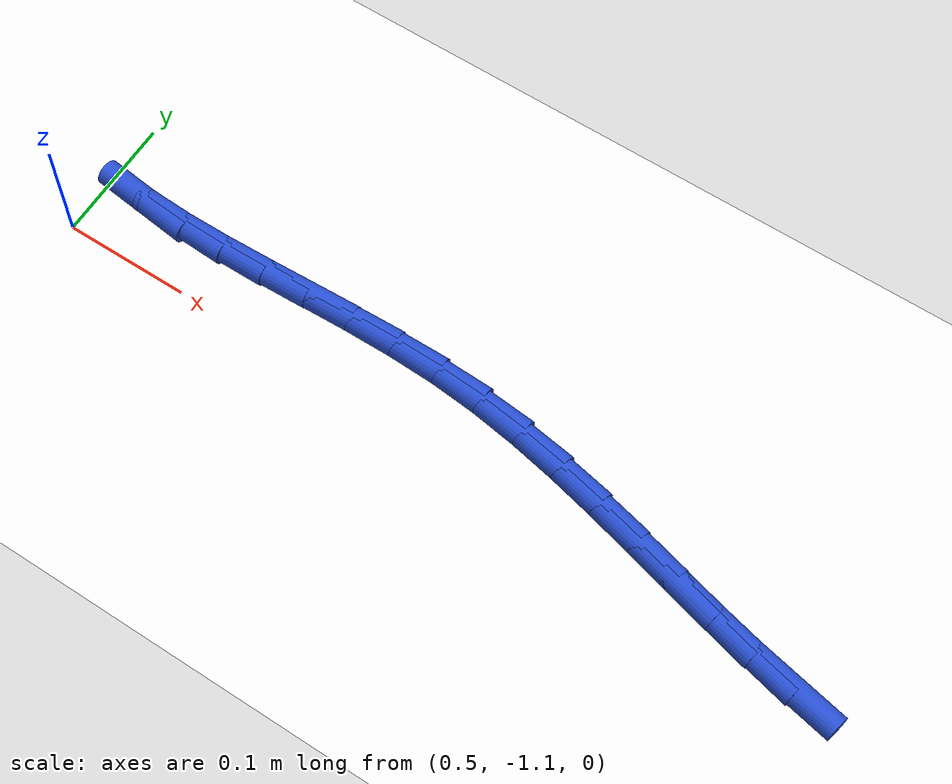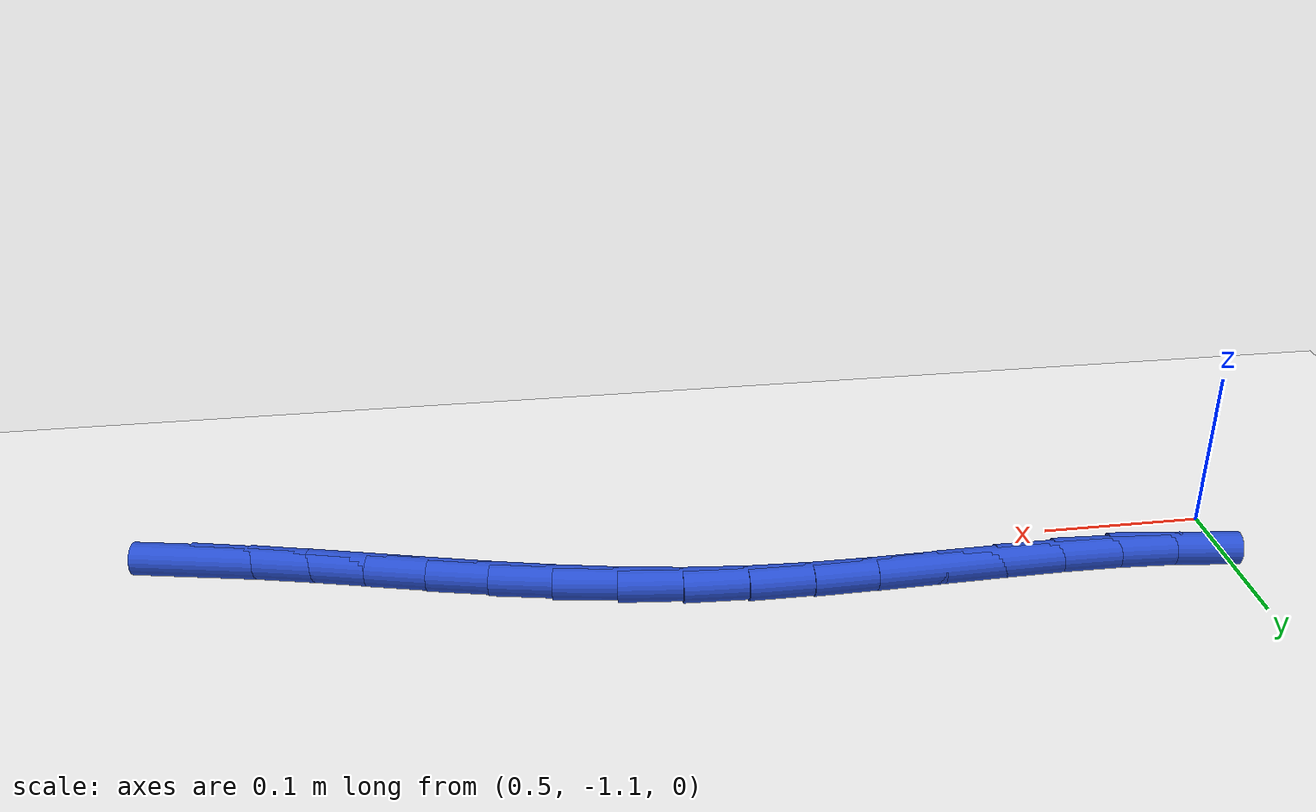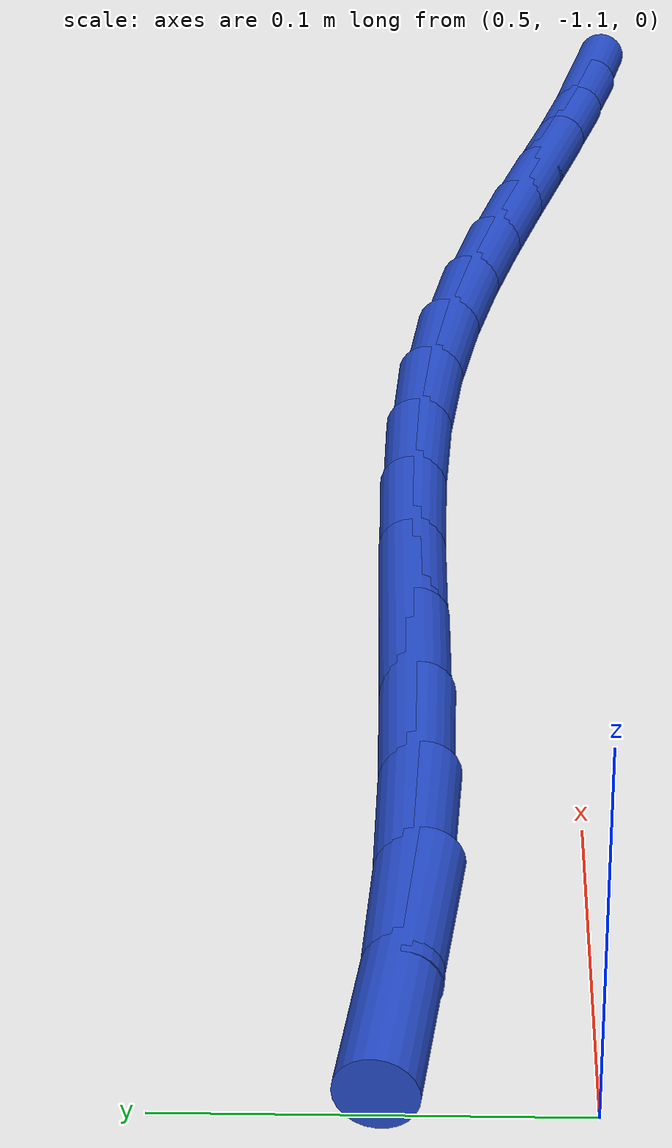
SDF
<sdf version="1.6">
 <world name="default">
  <model name="ground_plane">
   <static>1</static>
   <link name="link">
    <collision name="collision">
     <geometry><plane><normal>0 0 1</normal><size>100 100</size></plane></geometry>
     <surface><friction><ode><mu>100</mu><mu2>50</mu2></ode></friction></surface>
    </collision>
    <visual name="visual">
     <cast_shadows>0</cast_shadows>
     <geometry><plane><normal>0 0 1</normal><size>100 100</size></plane></geometry>
     <material>
      <script><uri>file://media/materials/scripts/gazebo.material</uri><name>Gazebo/WhiteGlow</name></script>
     </material>
    </visual>
   </link>
  </model>
  <model name="line">
   <link name="link_159">
    <pose>1.120962929521763 -1.1219151187524046 0.01 0 1.57 -0.19972638635487164</pose>
    <collision name="collision">
     <geometry><cylinder><radius>0.01</radius><length>0.08</length></cylinder></geometry>
    </collision>
    <visual name="visual">
     <material>
      <script><name>Gazebo/Blue</name><uri>file://media/materials/scripts/gazebo.material</uri></script>
     </material>
     <geometry><cylinder><radius>0.01</radius><length>0.08</length></cylinder></geometry>
    </visual>
   </link>
   <link name="link_160">
    <pose>1.0866113680267109 -1.11496149723544 0.01 0 1.57 -0.23361096037218496</pose>
    <collision name="collision">
     <geometry><cylinder><radius>0.01</radius><length>0.08</length></cylinder></geometry>
    </collision>
    <visual name="visual">
     <material>
      <script><name>Gazebo/Blue</name><uri>file://media/materials/scripts/gazebo.material</uri></script>
     </material>
     <geometry><cylinder><radius>0.01</radius><length>0.08</length></cylinder></geometry>
    </visual>
   </link>
   <link name="link_161">
    <pose>1.051912156080699 -1.1067046279875887 0.01 0 1.57 -0.25285566538584753</pose>
    <collision name="collision">
     <geometry><cylinder><radius>0.01</radius><length>0.08</length></cylinder></geometry>
    </collision>
    <visual name="visual">
     <material>
      <script><name>Gazebo/Blue</name><uri>file://media/materials/scripts/gazebo.material</uri></script>
     </material>
     <geometry><cylinder><radius>0.01</radius><length>0.08</length></cylinder></geometry>
    </visual>
   </link>
   <link name="link_162">
    <pose>1.0168391222593207 -1.0976422469835116 0.01 0 1.57 -0.2582501961681299</pose>
    <collision name="collision">
     <geometry><cylinder><radius>0.01</radius><length>0.08</length></cylinder></geometry>
    </collision>
    <visual name="visual">
     <material>
      <script><name>Gazebo/Blue</name><uri>file://media/materials/scripts/gazebo.material</uri></script>
     </material>
     <geometry><cylinder><radius>0.01</radius><length>0.08</length></cylinder></geometry>
    </visual>
   </link>
   <link name="link_163">
    <pose>0.9813660951381723 -1.088272090197871 0.01 0 1.57 -0.25035634954910585</pose>
    <collision name="collision">
     <geometry><cylinder><radius>0.01</radius><length>0.08</length></cylinder></geometry>
    </collision>
    <visual name="visual">
     <material>
      <script><name>Gazebo/Blue</name><uri>file://media/materials/scripts/gazebo.material</uri></script>
     </material>
     <geometry><cylinder><radius>0.01</radius><length>0.08</length></cylinder></geometry>
    </visual>
   </link>
   <link name="link_164">
    <pose>0.9454669032928469 -1.0790918936053282 0.01 0 1.57 -0.22950525379686185</pose>
    <collision name="collision">
     <geometry><cylinder><radius>0.01</radius><length>0.08</length></cylinder></geometry>
    </collision>
    <visual name="visual">
     <material>
      <script><name>Gazebo/Blue</name><uri>file://media/materials/scripts/gazebo.material</uri></script>
     </material>
     <geometry><cylinder><radius>0.01</radius><length>0.08</length></cylinder></geometry>
    </visual>
   </link>
   <link name="link_165">
    <pose>0.9091153752989414 -1.0705993931805462 0.01 0 1.57 -0.19585634455069859</pose>
    <collision name="collision">
     <geometry><cylinder><radius>0.01</radius><length>0.08</length></cylinder></geometry>
    </collision>
    <visual name="visual">
     <material>
      <script><name>Gazebo/Blue</name><uri>file://media/materials/scripts/gazebo.material</uri></script>
     </material>
     <geometry><cylinder><radius>0.01</radius><length>0.08</length></cylinder></geometry>
    </visual>
   </link>
   <link name="link_166">
    <pose>0.8722853397320489 -1.0632923248981858 0.01 0 1.57 -0.14951053516440008</pose>
    <collision name="collision">
     <geometry><cylinder><radius>0.01</radius><length>0.08</length></cylinder></geometry>
    </collision>
    <visual name="visual">
     <material>
      <script><name>Gazebo/Blue</name><uri>file://media/materials/scripts/gazebo.material</uri></script>
     </material>
     <geometry><cylinder><radius>0.01</radius><length>0.08</length></cylinder></geometry>
    </visual>
   </link>
   <link name="link_167">
    <pose>0.8349506251677654 -1.0576684247329093 0.01 0 1.57 -0.09100046176916404</pose>
    <collision name="collision">
     <geometry><cylinder><radius>0.01</radius><length>0.08</length></cylinder></geometry>
    </collision>
    <visual name="visual">
     <material>
      <script><name>Gazebo/Blue</name><uri>file://media/materials/scripts/gazebo.material</uri></script>
     </material>
     <geometry><cylinder><radius>0.01</radius><length>0.08</length></cylinder></geometry>
    </visual>
   </link>
   <link name="link_168">
    <pose>0.7970883546240788 -1.0542133982388802 0.01 0 1.57 -0.03327155784780639</pose>
    <collision name="collision">
     <geometry><cylinder><radius>0.01</radius><length>0.08</length></cylinder></geometry>
    </collision>
    <visual name="visual">
     <material>
      <script><name>Gazebo/Blue</name><uri>file://media/materials/scripts/gazebo.material</uri></script>
     </material>
     <geometry><cylinder><radius>0.01</radius><length>0.08</length></cylinder></geometry>
    </visual>
   </link>
   <link name="link_169">
    <pose>0.7588053859845358 -1.0529391940186041 0.01 0 1.57 0.007796439501294369</pose>
    <collision name="collision">
     <geometry><cylinder><radius>0.01</radius><length>0.08</length></cylinder></geometry>
    </collision>
    <visual name="visual">
     <material>
      <script><name>Gazebo/Blue</name><uri>file://media/materials/scripts/gazebo.material</uri></script>
     </material>
     <geometry><cylinder><radius>0.01</radius><length>0.08</length></cylinder></geometry>
    </visual>
   </link>
   <link name="link_170">
    <pose>0.7203780759893841 -1.0532387962865917 0.01 0 1.57 0.031978254646763994</pose>
    <collision name="collision">
     <geometry><cylinder><radius>0.01</radius><length>0.08</length></cylinder></geometry>
    </collision>
    <visual name="visual">
     <material>
      <script><name>Gazebo/Blue</name><uri>file://media/materials/scripts/gazebo.material</uri></script>
     </material>
     <geometry><cylinder><radius>0.01</radius><length>0.08</length></cylinder></geometry>
    </visual>
   </link>
   <link name="link_171">
    <pose>0.6820942072411782 -1.0544634650710938 0.01 0 1.57 0.03963288027107829</pose>
    <collision name="collision">
     <geometry><cylinder><radius>0.01</radius><length>0.08</length></cylinder></geometry>
    </collision>
    <visual name="visual">
     <material>
      <script><name>Gazebo/Blue</name><uri>file://media/materials/scripts/gazebo.material</uri></script>
     </material>
     <geometry><cylinder><radius>0.01</radius><length>0.08</length></cylinder></geometry>
    </visual>
   </link>
   <link name="link_172">
    <pose>0.6442415623424701 -1.0559644604003604 0.01 0 1.57 0.030383087987073065</pose>
    <collision name="collision">
     <geometry><cylinder><radius>0.01</radius><length>0.08</length></cylinder></geometry>
    </collision>
    <visual name="visual">
     <material>
      <script><name>Gazebo/Blue</name><uri>file://media/materials/scripts/gazebo.material</uri></script>
     </material>
     <geometry><cylinder><radius>0.01</radius><length>0.08</length></cylinder></geometry>
    </visual>
   </link>
   <link name="link_173">
    <pose>0.6071079238958124 -1.0570930423026423 0.01 0 1.57 0.0029736384076704003</pose>
    <collision name="collision">
     <geometry><cylinder><radius>0.01</radius><length>0.08</length></cylinder></geometry>
    </collision>
    <visual name="visual">
     <material>
      <script><name>Gazebo/Blue</name><uri>file://media/materials/scripts/gazebo.material</uri></script>
     </material>
     <geometry><cylinder><radius>0.01</radius><length>0.08</length></cylinder></geometry>
    </visual>
   </link>
   <link name="link_174">
    <pose>0.5709810745037579 -1.0572004708061893 0.01 0 1.57 -0.044826760385937206</pose>
    <collision name="collision">
     <geometry><cylinder><radius>0.01</radius><length>0.08</length></cylinder></geometry>
    </collision>
    <visual name="visual">
     <material>
      <script><name>Gazebo/Blue</name><uri>file://media/materials/scripts/gazebo.material</uri></script>
     </material>
     <geometry><cylinder><radius>0.01</radius><length>0.08</length></cylinder></geometry>
    </visual>
   </link>
   <link name="link_175">
    <pose>0.5361487967688596 -1.0556380059392523 0.01 0 1.57 -0.11619920295981875</pose>
    <collision name="collision">
     <geometry><cylinder><radius>0.01</radius><length>0.08</length></cylinder></geometry>
    </collision>
    <visual name="visual">
     <material>
      <script><name>Gazebo/Blue</name><uri>file://media/materials/scripts/gazebo.material</uri></script>
     </material>
     <geometry><cylinder><radius>0.01</radius><length>0.08</length></cylinder></geometry>
    </visual>
   </link>
  </model>
 </world>
</sdf>
